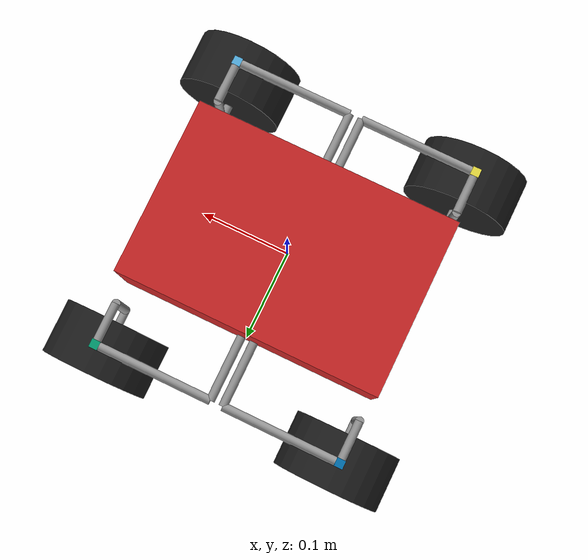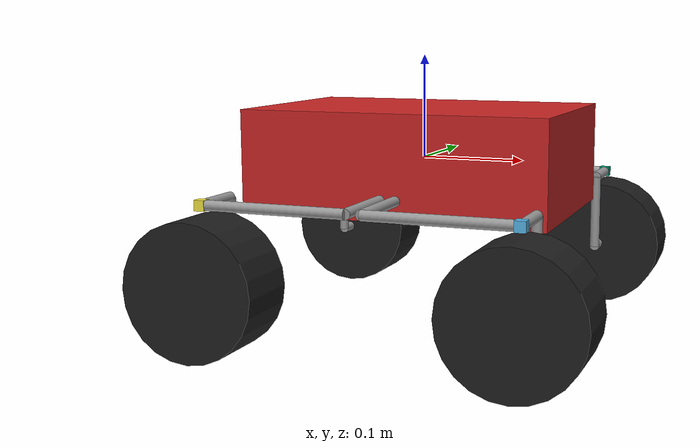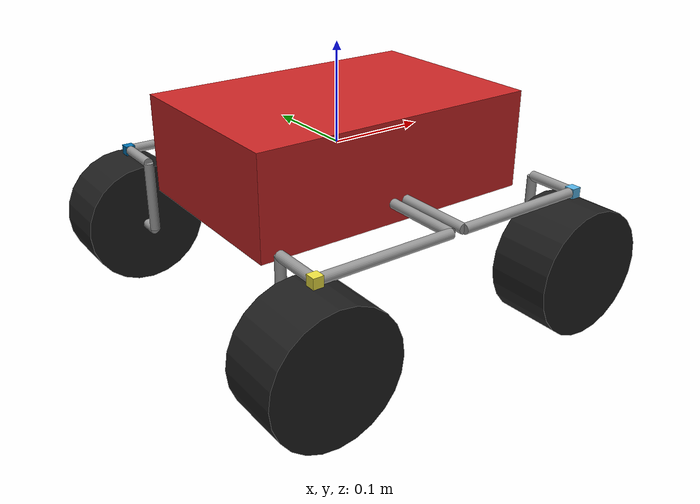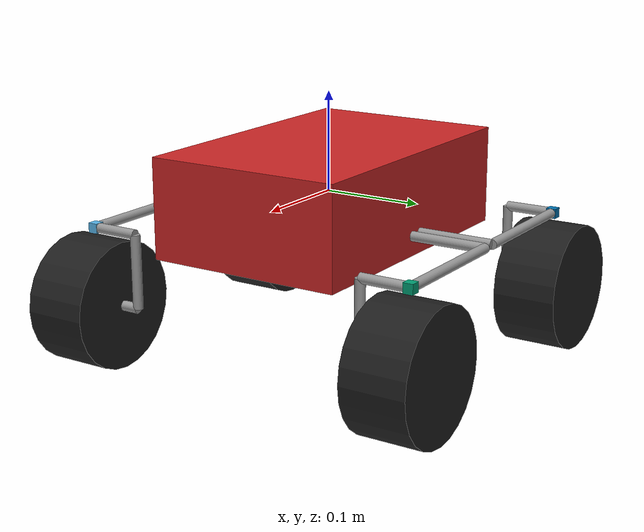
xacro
<?xml version="1.0"?>
<robot xmlns:xacro="http://ros.org/wiki/xacro">

    <xacro:property name="velocity" value="false"/>

    <xacro:macro name="base_link_xacro" params="mass l w h">
        <link name="base_link">
            <inertial>
                <origin xyz="0 0 0" rpy="0 0 0"/>
                <mass value="${mass}"/>
                <inertia ixx="${(1/12.0)*mass*(w * w + h * h)}" ixy="0.0" ixz="0.0"
                        iyy="${(1/12.0)*mass*(l * l + h * h)}" iyz="0.0"
                        izz="${(1/12.0)*mass*(w * w + l * l)}"/>
            </inertial>
            <visual>
                <geometry>
                    <box size="${l} ${w} ${h}"/>
                </geometry>
            </visual>
        </link>
        <gazebo reference="base_link">
            <gravity>true</gravity>
            <material>Gazebo/Red</material>
        </gazebo>
    </xacro:macro>

    <xacro:macro name="wheel_steering" params="name mass l w h">
        <link name="${name}">
            <inertial>
                <mass value="${mass}"/>
                <inertia ixx="${(1/12.0) * mass * (w*w + h*h)}" ixy="0.0" ixz="0.0"
                        iyy="${(1/12.0) * mass * (l*l + h*h)}" iyz="0.0"
                        izz="${(1/2.0) * mass * (l*l + w*w)}"/>
            </inertial>
            <visual>
                <geometry>
                    <box size="${l} ${w} ${h}"/>
                </geometry>
            </visual>
            <material name="Cyan">
                <color rgba="0 1.0 1.0 1.0"/>
            </material>
        </link>
    </xacro:macro>

    <xacro:macro name="wheel_support" params="name mass r l">
        <link name="${name}">
            <inertial>
                <mass value="${mass}"/>
                <inertia ixx="${(1/12.0) * mass * (3*r*r + l*l)}" ixy="0.0" ixz="0.0"
                        iyy="${(1/12.0) * mass * (3*r*r + l*l)}" iyz="0.0"
                        izz="${(1/2.0) * mass * (r*r)}"/>
            </inertial>
            <visual>
                <geometry>
                    <cylinder radius="${r}" length="${l}"/>
                </geometry>
            </visual>
        </link>
        <gazebo reference="${name}">
            <gravity>true</gravity>
            <material>Gazebo/Grey</material>
        </gazebo>
    </xacro:macro>

    <xacro:macro name="wheel" params="name mass r l">
        <link name="${name}">
            <inertial>
                <mass value="${mass}"/>
                <inertia ixx="${(1/12.0) * mass * (3*r*r + l*l)}" ixy="0.0" ixz="0.0"
                        iyy="${(1/12.0) * mass * (3*r*r + l*l)}" iyz="0.0"
                        izz="${(1/2.0) * mass * (r*r)}"/>
            </inertial>
            <visual>
                <geometry>
                    <cylinder radius="${r}" length="${l}"/>
                </geometry>
            </visual>
            <collision>
                <geometry>
                    <cylinder radius="${r}" length="${l}"/>
                </geometry>
            </collision>
        </link>
        <gazebo reference="${name}">
            <gravity>true</gravity>
            <material>Gazebo/Black</material>
        </gazebo>
    </xacro:macro>

    <xacro:if value="${velocity}">
        <xacro:macro name="transmission_wheel" params="name">
            <transmission name="${name}_trans">
                <type>transmission_interface/SimpleTransmission</type>
                <joint name="${name}_joint">
                    <hardwareInterface>hardware_interface/VelocityJointInterface</hardwareInterface>
                </joint>
                <actuator name="${name}_motor">
                    <mechanicalReduction>1</mechanicalReduction>
                    <hardwareInterface>hardware_interface/VelocityJointInterface</hardwareInterface>
                </actuator>
            </transmission>
        </xacro:macro>
    </xacro:if>
    <xacro:unless value="${velocity}">
        <xacro:macro name="transmission_wheel" params="name">
            <transmission name="${name}_trans">
                <type>transmission_interface/SimpleTransmission</type>
                <joint name="${name}_joint">
                    <hardwareInterface>hardware_interface/EffortJointInterface</hardwareInterface>
                </joint>
                <actuator name="${name}_motor">
                    <mechanicalReduction>1</mechanicalReduction>
                    <hardwareInterface>hardware_interface/EffortJointInterface</hardwareInterface>
                </actuator>
            </transmission>
        </xacro:macro>
    </xacro:unless>

    <xacro:macro name="transmission_steering" params="name">
        <transmission name="${name}_trans">
            <type>transmission_interface/SimpleTransmission</type>
            <joint name="${name}_joint">
                <hardwareInterface>hardware_interface/VelocityJointInterface</hardwareInterface>
            </joint>
            <actuator name="${name}_motor">
                <mechanicalReduction>1</mechanicalReduction>
                <hardwareInterface>hardware_interface/VelocityJointInterface</hardwareInterface>
            </actuator>
        </transmission>
    </xacro:macro>

    <xacro:macro name="transmission_contact" params="name">
        <transmission name="${name}_trans">
            <type>transmission_interface/SimpleTransmission</type>
            <joint name="${name}_joint">
                <hardwareInterface>hardware_interface/EffortJointInterface</hardwareInterface>
            </joint>
            <actuator name="${name}_motor">
                <mechanicalReduction>1</mechanicalReduction>
                <hardwareInterface>hardware_interface/EffortJointInterface</hardwareInterface>
            </actuator>
        </transmission>
    </xacro:macro>

    <xacro:macro name="fixed_joint" params="name parent child x y z roll pitch yaw">
        <joint name="${name}" type="fixed">
            <origin xyz="${x} ${y} ${z}" rpy="${roll} ${pitch} ${yaw}"/>
            <parent link="${parent}"/>
            <child link="${child}"/>
            <axis xyz="0 0 1"/>
        </joint>
    </xacro:macro>

    <xacro:macro name="contact_joint" params="name parent child x y z roll pitch yaw type">
        <joint name="${name}" type="${type}">
            <origin xyz="${x} ${y} ${z}" rpy="${roll} ${pitch} ${yaw}"/>
            <parent link="${parent}"/>
            <child link="${child}"/>
            <axis xyz="0 0 1"/>
            <limit lower="${-pi/3}" upper="${pi/3}" effort="100.0" velocity="10.0"/>
        </joint>
    </xacro:macro>

    <xacro:macro name="steering_joint" params="name parent child x y z roll pitch yaw type">
        <joint name="${name}" type="${type}">
            <origin xyz="${x} ${y} ${z}" rpy="${roll} ${pitch} ${yaw}"/>
            <parent link="${parent}"/>
            <child link="${child}"/>
            <axis xyz="0 1 0"/>
            <limit lower="${-pi/3}" upper="${pi/3}" effort="5.0" velocity="20.0"/>
        </joint>
    </xacro:macro>

    <xacro:macro name="wheel_joint" params="name parent child x y z roll pitch yaw type">
        <joint name="${name}" type="${type}">
            <origin xyz="${x} ${y} ${z}" rpy="${roll} ${pitch} ${yaw}"/>
            <parent link="${parent}"/>
            <child link="${child}"/>
            <axis xyz="0 0 1"/>
            <limit effort="5.0" velocity="100.0"/>
        </joint>
    </xacro:macro>

    <!-- Links -->
    <xacro:base_link_xacro mass="13.6" l="0.3" w="0.2" h="0.1"/>

    <xacro:wheel_support name="ws_fr_1" mass="0.03" r="0.005" l="0.177"/>
    <xacro:wheel_support name="ws_fl_1" mass="0.03" r="0.005" l="0.177"/>
    <xacro:wheel_support name="ws_br_1" mass="0.03" r="0.005" l="0.177"/>
    <xacro:wheel_support name="ws_bl_1" mass="0.03" r="0.005" l="0.177"/>

    <xacro:wheel_support name="ws_fr_2" mass="0.02" r="0.005" l="0.14"/>
    <xacro:wheel_support name="ws_fl_2" mass="0.02" r="0.005" l="0.14"/>
    <xacro:wheel_support name="ws_br_2" mass="0.02" r="0.005" l="0.14"/>
    <xacro:wheel_support name="ws_bl_2" mass="0.02" r="0.005" l="0.14"/>

    <xacro:wheel_steering name="front_right_steering" mass="0.01" l="0.01" w="0.01" h="0.01"/>
    <xacro:wheel_steering name="front_left_steering" mass="0.01" l="0.01" w="0.01" h="0.01"/>
    <xacro:wheel_steering name="back_right_steering" mass="0.01" l="0.01" w="0.01" h="0.01"/>
    <xacro:wheel_steering name="back_left_steering" mass="0.01" l="0.01" w="0.01" h="0.01"/>

    <xacro:wheel_support name="ws_fr_3" mass="0.01" r="0.005" l="0.05"/>
    <xacro:wheel_support name="ws_fl_3" mass="0.01" r="0.005" l="0.05"/>
    <xacro:wheel_support name="ws_br_3" mass="0.01" r="0.005" l="0.05"/>
    <xacro:wheel_support name="ws_bl_3" mass="0.01" r="0.005" l="0.05"/>

    <xacro:wheel_support name="ws_fr_4" mass="0.01" r="0.005" l="0.075"/>
    <xacro:wheel_support name="ws_fl_4" mass="0.01" r="0.005" l="0.075"/>
    <xacro:wheel_support name="ws_br_4" mass="0.01" r="0.005" l="0.075"/>
    <xacro:wheel_support name="ws_bl_4" mass="0.01" r="0.005" l="0.075"/>

    <xacro:wheel_support name="ws_fr_5" mass="0.01" r="0.005" l="0.05"/>
    <xacro:wheel_support name="ws_fl_5" mass="0.01" r="0.005" l="0.05"/>
    <xacro:wheel_support name="ws_br_5" mass="0.01" r="0.005" l="0.05"/>
    <xacro:wheel_support name="ws_bl_5" mass="0.01" r="0.005" l="0.05"/>

    <xacro:wheel name="front_right_wheel" mass="0.1" r="0.0645" l="0.065"/>
    <xacro:wheel name="front_left_wheel" mass="0.1" r="0.0645" l="0.065"/>
    <xacro:wheel name="back_right_wheel" mass="0.1" r="0.0645" l="0.065"/>
    <xacro:wheel name="back_left_wheel" mass="0.1" r="0.0645" l="0.065"/>

    <!-- Joints -->
    <xacro:contact_joint name="front_right_contact_joint" parent="base_link" child="ws_fr_1" x="0.0075" y="-0.0885" z="-0.03" roll="${pi/2}" pitch="0.0" yaw="0.0" type="fixed"/>
    <xacro:contact_joint name="front_left_contact_joint" parent="base_link" child="ws_fl_1" x="0.0075" y="0.0885" z="-0.03" roll="${pi/2}" pitch="0.0" yaw="0.0" type="fixed"/>
    <xacro:contact_joint name="back_right_contact_joint" parent="base_link" child="ws_br_1" x="-0.0075" y="-0.0885" z="-0.03" roll="${pi/2}" pitch="0.0" yaw="0.0" type="fixed"/>
    <xacro:contact_joint name="back_left_contact_joint" parent="base_link" child="ws_bl_1" x="-0.0075" y="0.0885" z="-0.03" roll="${pi/2}" pitch="0.0" yaw="0.0" type="fixed"/>

    <xacro:fixed_joint name="fr_1_to_fr_2" parent="ws_fr_1" child="ws_fr_2" x="0.07" y="0.0" z="0.0885" roll="0.0" pitch="${pi/2}" yaw="0.0"/>
    <xacro:fixed_joint name="fl_1_to_fl_2" parent="ws_fl_1" child="ws_fl_2" x="0.07" y="0.0" z="-0.0885" roll="0.0" pitch="${pi/2}" yaw="0.0"/>
    <xacro:fixed_joint name="br_1_to_br_2" parent="ws_br_1" child="ws_br_2" x="-0.07" y="0.0" z="0.0885" roll="0.0" pitch="${pi/2}" yaw="0.0"/>
    <xacro:fixed_joint name="bl_1_to_bl_2" parent="ws_bl_1" child="ws_bl_2" x="-0.07" y="0.0" z="-0.0885" roll="0.0" pitch="${pi/2}" yaw="0.0"/>

    <xacro:steering_joint name="front_right_steering_joint" parent="ws_fr_2" child="front_right_steering" x="0.0" y="0.0" z="0.07" roll="0.0" pitch="0.0" yaw="0.0" type="revolute"/>
    <xacro:steering_joint name="front_left_steering_joint" parent="ws_fl_2" child="front_left_steering" x="0.0" y="0.0" z="0.07" roll="0.0" pitch="0.0" yaw="0.0" type="revolute"/>
    <xacro:steering_joint name="back_right_steering_joint" parent="ws_br_2" child="back_right_steering" x="0.0" y="0.0" z="-0.07" roll="0.0" pitch="0.0" yaw="0.0" type="revolute"/>
    <xacro:steering_joint name="back_left_steering_joint" parent="ws_bl_2" child="back_left_steering" x="0.0" y="0.0" z="-0.07" roll="0.0" pitch="0.0" yaw="0.0" type="revolute"/>

    <xacro:fixed_joint name="fr_steer_to_fr_3" parent="front_right_steering" child="ws_fr_3" x="0.025" y="0.0" z="0.0" roll="0.0" pitch="${pi/2}" yaw="0.0"/>
    <xacro:fixed_joint name="fl_steer_to_fl_3" parent="front_left_steering" child="ws_fl_3" x="-0.025" y="0.0" z="0.0" roll="0.0" pitch="${pi/2}" yaw="0.0"/>
    <xacro:fixed_joint name="br_steer_to_br_3" parent="back_right_steering" child="ws_br_3" x="0.025" y="0.0" z="0.0" roll="0.0" pitch="${pi/2}" yaw="0.0"/>
    <xacro:fixed_joint name="bl_steer_to_bl_3" parent="back_left_steering" child="ws_bl_3" x="-0.025" y="0.0" z="0.0" roll="0.0" pitch="${pi/2}" yaw="0.0"/>

    <xacro:fixed_joint name="fr_3_to_fr_4" parent="ws_fr_3" child="ws_fr_4" x="0.0" y="-0.0375" z="0.025" roll="${-pi/2}" pitch="0.0" yaw="0.0"/>
    <xacro:fixed_joint name="fl_3_to_fl_4" parent="ws_fl_3" child="ws_fl_4" x="0.0" y="-0.0375" z="-0.025" roll="${-pi/2}" pitch="0.0" yaw="0.0"/>
    <xacro:fixed_joint name="br_3_to_br_4" parent="ws_br_3" child="ws_br_4" x="0.0" y="-0.0375" z="0.025" roll="${-pi/2}" pitch="0.0" yaw="0.0"/>
    <xacro:fixed_joint name="bl_3_to_bl_4" parent="ws_bl_3" child="ws_bl_4" x="0.0" y="-0.0375" z="-0.025" roll="${-pi/2}" pitch="0.0" yaw="0.0"/>

    <xacro:fixed_joint name="fr_4_to_fr_5" parent="ws_fr_4" child="ws_fr_5" x="0.0" y="0.025" z="-0.0375" roll="${pi/2}" pitch="0.0" yaw="0.0"/>
    <xacro:fixed_joint name="fl_4_to_fl_5" parent="ws_fl_4" child="ws_fl_5" x="0.0" y="-0.025" z="-0.0375" roll="${pi/2}" pitch="0.0" yaw="0.0"/>
    <xacro:fixed_joint name="br_4_to_br_5" parent="ws_br_4" child="ws_br_5" x="0.0" y="0.025" z="-0.0375" roll="${pi/2}" pitch="0.0" yaw="0.0"/>
    <xacro:fixed_joint name="bl_4_to_bl_5" parent="ws_bl_4" child="ws_bl_5" x="0.0" y="-0.025" z="-0.0375" roll="${pi/2}" pitch="0.0" yaw="0.0"/>

    <xacro:wheel_joint name="front_right_wheel_joint" parent="ws_fr_5" child="front_right_wheel" x="0.0" y="0.0" z="-0.025" roll="0.0" pitch="0.0" yaw="0.0" type="continuous"/>
    <xacro:wheel_joint name="front_left_wheel_joint" parent="ws_fl_5" child="front_left_wheel" x="0.0" y="0.0" z="0.025" roll="0.0" pitch="0.0" yaw="0.0" type="continuous"/>
    <xacro:wheel_joint name="back_right_wheel_joint" parent="ws_br_5" child="back_right_wheel" x="0.0" y="0.0" z="-0.025" roll="0.0" pitch="0.0" yaw="0.0" type="continuous"/>
    <xacro:wheel_joint name="back_left_wheel_joint" parent="ws_bl_5" child="back_left_wheel" x="0.0" y="0.0" z="0.025" roll="0.0" pitch="0.0" yaw="0.0" type="continuous"/>

    <!-- Transmissions  -->
    <xacro:transmission_wheel name="front_right_wheel"/>
    <xacro:transmission_wheel name="front_left_wheel"/>
    <xacro:transmission_wheel name="back_right_wheel"/>
    <xacro:transmission_wheel name="back_left_wheel"/>

    <xacro:transmission_steering name="front_right_steering"/>
    <xacro:transmission_steering name="front_left_steering"/>
    <xacro:transmission_steering name="back_right_steering"/>
    <xacro:transmission_steering name="back_left_steering"/>

    <gazebo>
        <plugin name="gazebo_ros_control" filename="libgazebo_ros_control.so">
            <robotSimType>gazebo_ros_control/DefaultRobotHWSim</robotSimType>
        </plugin>

    </gazebo>

</robot>
